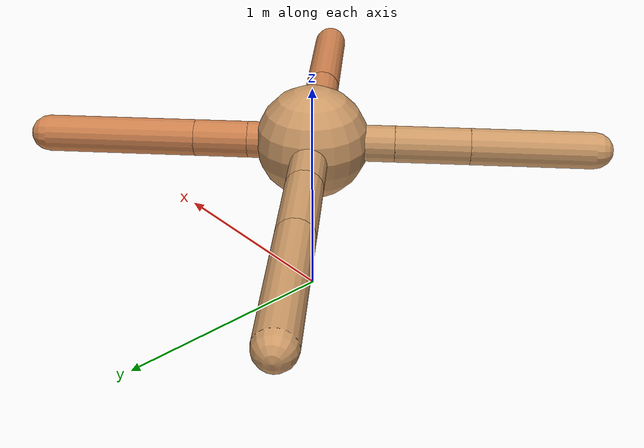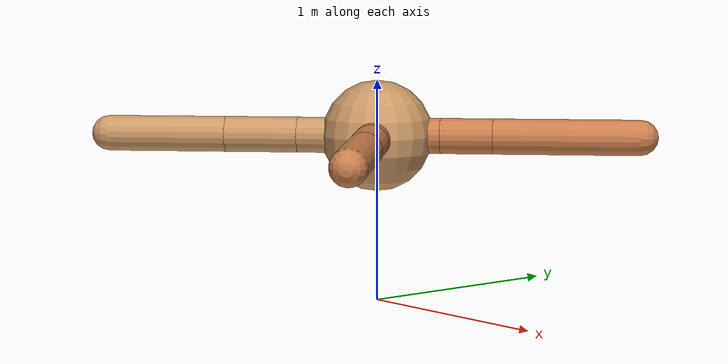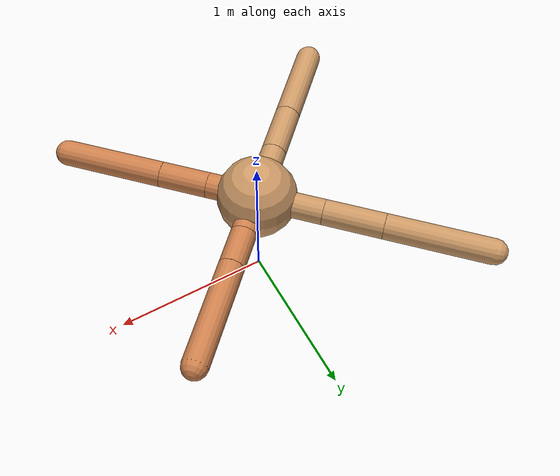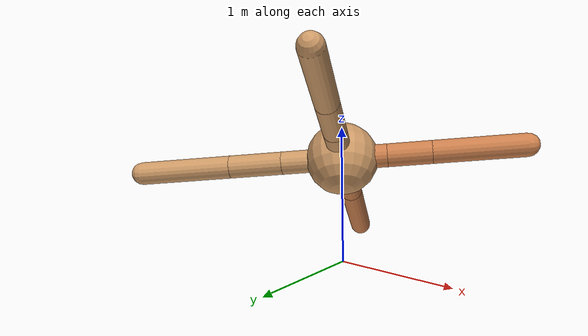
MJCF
<mujoco model="ant">
  <compiler angle="degree" coordinate="local" inertiafromgeom="true" />
  <option integrator="RK4" timestep="0.01" />
  <custom>
    <numeric data="0.0 0.0 0.55 1.0 0.0 0.0 0.0 0.0 1.0 0.0 -1.0 0.0 -1.0 0.0 1.0" name="init_qpos" />
  </custom>
  <default>
    <joint armature="1" damping="1" limited="true" />
    <geom conaffinity="0" condim="3" density="5.0" friction="1.5 0.1 0.1" margin="0.01" rgba="0.8 0.6 0.4 1" />
  </default>
  <worldbody>
    <body name="torso" pos="0 0 0.75">
      <geom name="torso_geom" pos="0 0 0" size="0.25" type="sphere" />

      <body name="front_left_leg" pos="0 0 0">
        <geom fromto="0.0 0.0 0.0 0.20057427505388203 0.20057427505388203 0.0" name="aux_1_geom" size="0.08" type="capsule" rgba=".8 .5 .3 1" />
        <body name="aux_1" pos="0.20057427505388203 0.20057427505388203 0.0">
          <joint axis="0 0 1" name="hip_1" pos="0.0 0.0 0.0" range="-40 40" type="hinge" />
          <geom fromto="0.0 0.0 0.0 0.16748009651727214 0.16748009651727214 0.0" name="left_leg_geom" size="0.08" type="capsule" rgba=".8 .5 .3 1" />
          <body pos="0.16748009651727214 0.16748009651727214 0.0" name="front_left_foot">
            <joint axis="-1 1 0" name="ankle_1" pos="0.0 0.0 0.0" range="30 100" type="hinge" />
            <geom fromto="0.0 0.0 0.0 0.4660744526449664 0.4660744526449664 0.0" name="left_ankle_geom" size="0.08" type="capsule" rgba=".8 .5 .3 1" />
          </body>
        </body>
      </body>
      <body name="front_right_leg" pos="0 0 0">
        <geom fromto="0.0 0.0 0.0 -0.2972588735822166 0.2972588735822166 0.0" name="aux_2_geom" size="0.08" type="capsule" />
        <body name="aux_2" pos="-0.2972588735822166 0.2972588735822166 0.0">
          <joint axis="0 0 1" name="hip_2" pos="0.0 0.0 0.0" range="-40 40" type="hinge" />
          <geom fromto="0.0 0.0 0.0 -0.2647997280593488 0.2647997280593488 0.0" name="right_leg_geom" size="0.08" type="capsule" />
          <body pos="-0.2647997280593488 0.2647997280593488 0.0" name="front_right_foot">
            <joint axis="1 1 0" name="ankle_2" pos="0.0 0.0 0.0" range="-100 -30" type="hinge" />
            <geom fromto="0.0 0.0 0.0 -0.4643672890153429 0.4643672890153429 0.0" name="right_ankle_geom" size="0.08" type="capsule" />
          </body>
        </body>
      </body>
      <body name="left_back_leg" pos="0 0 0">
        <geom fromto="0.0 0.0 0.0 -0.2552803050736019 -0.2552803050736019 0.0" name="aux_3_geom" size="0.08" type="capsule" />
        <body name="aux_3" pos="-0.2552803050736019 -0.2552803050736019 0.0">
          <joint axis="0 0 1" name="hip_3" pos="0.0 0.0 0.0" range="-40 40" type="hinge" />
          <geom fromto="0.0 0.0 0.0 -0.2318521549715009 -0.2318521549715009 0.0" name="back_leg_geom" size="0.08" type="capsule" />
          <body pos="-0.2318521549715009 -0.2318521549715009 0.0" name="left_back_foot">
            <joint axis="-1 1 0" name="ankle_3" pos="0.0 0.0 0.0" range="-100 -30" type="hinge" />
            <geom fromto="0.0 0.0 0.0 -0.37819888310283445 -0.37819888310283445 0.0" name="third_ankle_geom" size="0.08" type="capsule" />
          </body>
        </body>
      </body>
      <body name="right_back_leg" pos="0 0 0">
        <geom fromto="0.0 0.0 0.0 0.22164321523783223 -0.22164321523783223 0.0" name="aux_4_geom" size="0.08" type="capsule" rgba=".8 .5 .3 1" />
        <body name="aux_4" pos="0.22164321523783223 -0.22164321523783223 0.0">
          <joint axis="0 0 1" name="hip_4" pos="0.0 0.0 0.0" range="-40 40" type="hinge" />
          <geom fromto="0.0 0.0 0.0 0.21463966188860858 -0.21463966188860858 0.0" name="rightback_leg_geom" size="0.08" type="capsule" rgba=".8 .5 .3 1" />
          <body pos="0.21463966188860858 -0.21463966188860858 0.0" name="right_back_foot">
            <joint axis="1 1 0" name="ankle_4" pos="0.0 0.0 0.0" range="30 100" type="hinge" />
            <geom fromto="0.0 0.0 0.0 0.4435845178797931 -0.4435845178797931 0.0" name="fourth_ankle_geom" size="0.08" type="capsule" rgba=".8 .5 .3 1" />
          </body>
        </body>
      </body>
    </body>
  </worldbody>
  <actuator>
    <motor ctrllimited="true" ctrlrange="-1.0 1.0" joint="hip_4" gear="150" />
    <motor ctrllimited="true" ctrlrange="-1.0 1.0" joint="ankle_4" gear="150" />
    <motor ctrllimited="true" ctrlrange="-1.0 1.0" joint="hip_1" gear="150" />
    <motor ctrllimited="true" ctrlrange="-1.0 1.0" joint="ankle_1" gear="150" />
    <motor ctrllimited="true" ctrlrange="-1.0 1.0" joint="hip_2" gear="150" />
    <motor ctrllimited="true" ctrlrange="-1.0 1.0" joint="ankle_2" gear="150" />
    <motor ctrllimited="true" ctrlrange="-1.0 1.0" joint="hip_3" gear="150" />
    <motor ctrllimited="true" ctrlrange="-1.0 1.0" joint="ankle_3" gear="150" />
  </actuator>
</mujoco>
